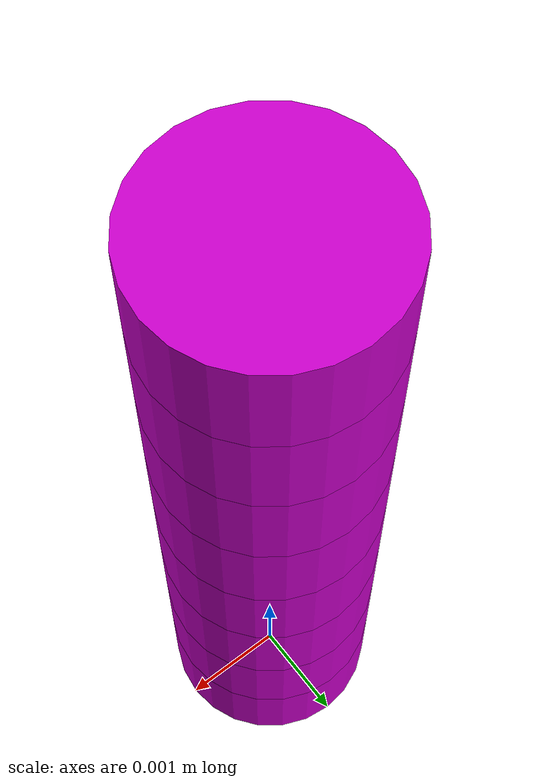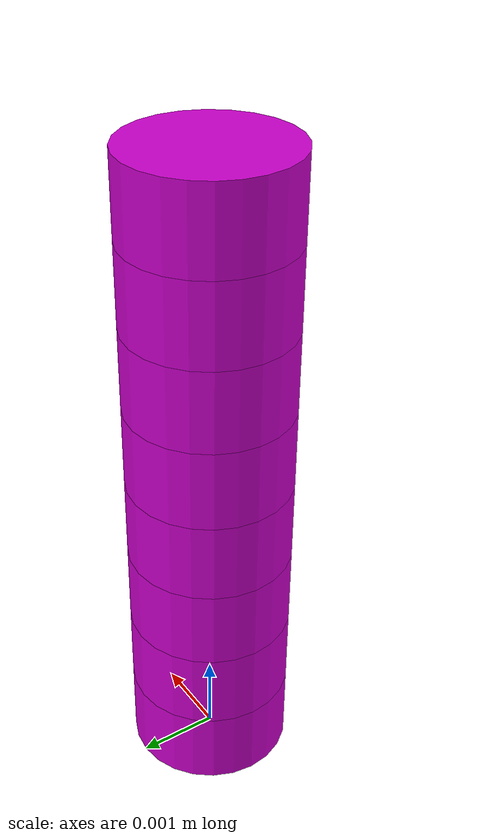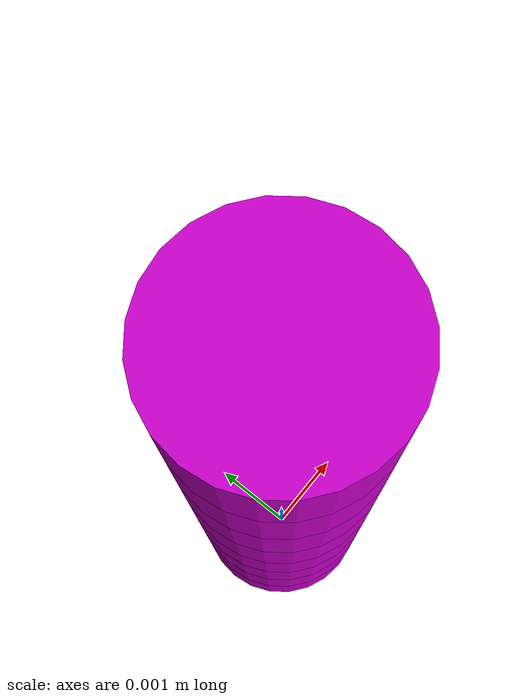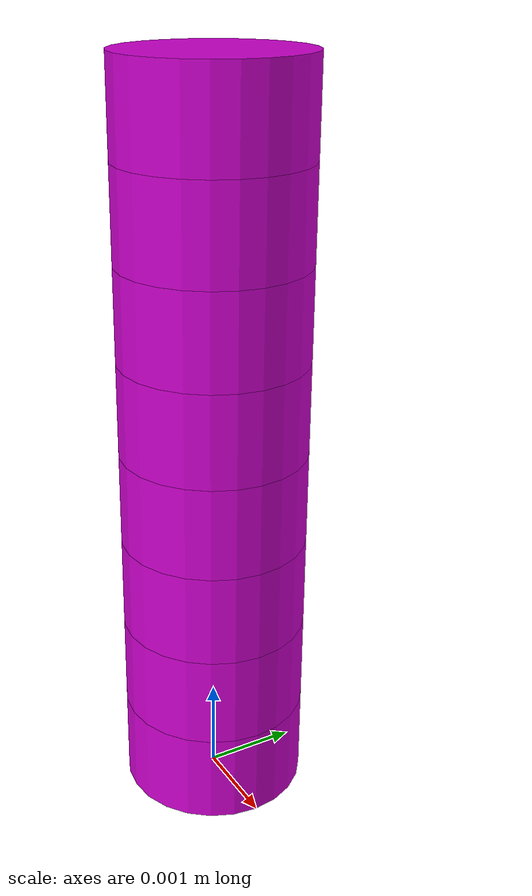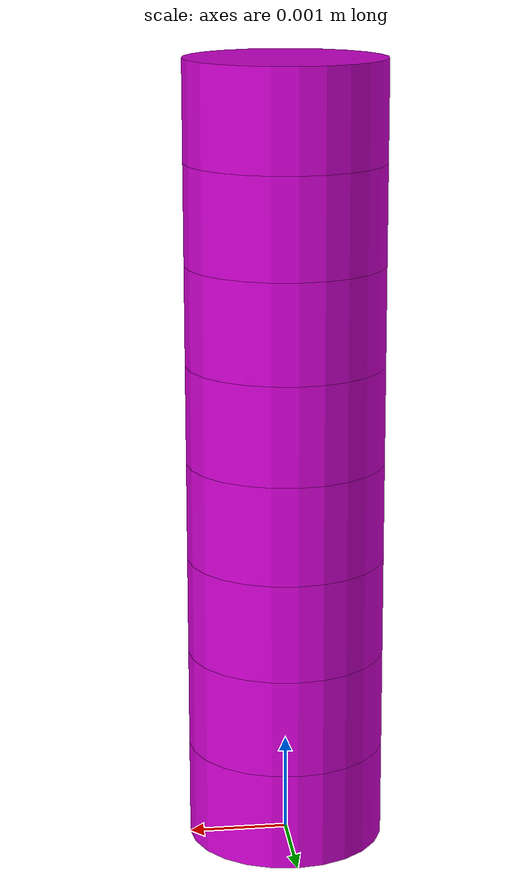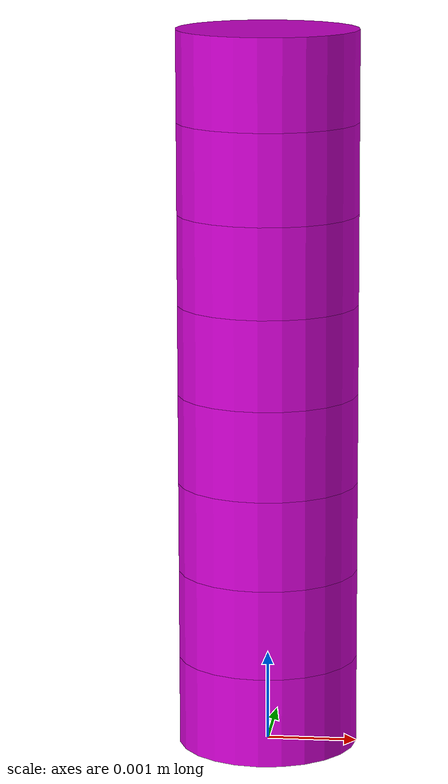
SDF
<?xml version='1.0'?>
<sdf version='1.4'>
	<model name="bluethread_8mm">
		<include>
			<uri>model://bt_component</uri>
			<name>comp_1</name>
			<pose>0 0 0 0 0 0</pose>
		</include>
		<include>
			<uri>model://bt_component</uri>
			<name>comp_2</name>
			<pose>0 0 0.001 0 0 0</pose>
		</include>
		<joint name="j1-2" type="revolute2">
			<parent>comp_1::link</parent>
			<child>comp_2::link</child>
			<pose>0 0 -0.0005 0 0 0</pose>
			<axis>
				<xyz>0 1.0 0</xyz>
			</axis>
			<axis2>
				<xyz>1.0 0 0</xyz>
			</axis2>
		</joint>
		<include>
			<uri>model://bt_component</uri>
			<name>comp_3</name>
			<pose>0 0 0.002 0 0 0</pose>
		</include>
		<joint name="j2-3" type="revolute">
			<parent>comp_2::link</parent>
			<child>comp_3::link</child>
			<pose>0 0 -0.0005 0 0 0</pose>
			<axis>
				<xyz>0 1.0 0</xyz>
			</axis>
			<axis2>
				<xyz>1.0 0 0</xyz>
			</axis2>
		</joint>
		<include>
			<uri>model://bt_component</uri>
			<name>comp_4</name>
			<pose>0 0 0.003 0 0 0</pose>
		</include>
		<joint name="j3-4" type="revolute">
			<parent>comp_3::link</parent>
			<child>comp_4::link</child>
			<pose>0 0 -0.0005 0 0 0</pose>
			<axis>
				<xyz>0 1.0 0</xyz>
			</axis>
			<axis2>
				<xyz>1.0 0 0</xyz>
			</axis2>
		</joint>
		<include>
			<uri>model://bt_component</uri>
			<name>comp_5</name>
			<pose>0 0 0.004 0 0 0</pose>
		</include>
		<joint name="j4-5" type="revolute">
			<parent>comp_4::link</parent>
			<child>comp_5::link</child>
			<pose>0 0 -0.0005 0 0 0</pose>
			<axis>
				<xyz>0 1.0 0</xyz>
			</axis>
			<axis2>
				<xyz>1.0 0 0</xyz>
			</axis2>
		</joint>
		<include>
			<uri>model://bt_component</uri>
			<name>comp_6</name>
			<pose>0 0 0.005 0 0 0</pose>
		</include>
		<joint name="j5-6" type="revolute">
			<parent>comp_5::link</parent>
			<child>comp_6::link</child>
			<pose>0 0 -0.0005 0 0 0</pose>
			<axis>
				<xyz>0 1.0 0</xyz>
			</axis>
			<axis2>
				<xyz>1.0 0 0</xyz>
			</axis2>
		</joint>
		<include>
			<uri>model://bt_component</uri>
			<name>comp_7</name>
			<pose>0 0 0.006 0 0 0</pose>
		</include>
		<joint name="j6-7" type="revolute">
			<parent>comp_6::link</parent>
			<child>comp_7::link</child>
			<pose>0 0 -0.0005 0 0 0</pose>
			<axis>
				<xyz>0 1.0 0</xyz>
			</axis>
			<axis2>
				<xyz>1.0 0 0</xyz>
			</axis2>
		</joint>
		<include>
			<uri>model://bt_component</uri>
			<name>comp_8</name>
			<pose>0 0 0.007 0 0 0</pose>
		</include>
		<joint name="j7-8" type="revolute">
			<parent>comp_7::link</parent>
			<child>comp_8::link</child>
			<pose>0 0 -0.0005 0 0 0</pose>
			<axis>
				<xyz>0 1.0 0</xyz>
			</axis>
			<axis2>
				<xyz>1.0 0 0</xyz>
			</axis2>
		</joint>
	</model>
</sdf>

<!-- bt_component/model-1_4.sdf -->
<sdf version='1.4'>
	<model name="bt_component">
		<link name='link'>
			<pose>0 0 0.0005 0 0 0</pose>
			<inertial>
				<mass>0.01</mass>
				<inertia>
					<ixx>0.00001</ixx>
					<ixy>0</ixy>
					<ixz>0</ixz>
					<iyy>0.00001</iyy>
					<iyz>0</iyz>
					<izz>0.00001</izz>
				</inertia>
			</inertial>
			<collision name='collision'>
				<geometry>
					<cylinder>
						<radius>0.0001</radius>
						<length>0.001</length>
          				</cylinder>
        			</geometry>
			</collision>
 			<visual name='visual'>
				<geometry>
					<cylinder>
						<radius>0.001</radius>
						<length>0.001</length>
          				</cylinder>
        			</geometry>
				<material>
					<ambient>.8 0 .8 1</ambient>
				</material>
			</visual>
		</link>
	</model>
</sdf>
